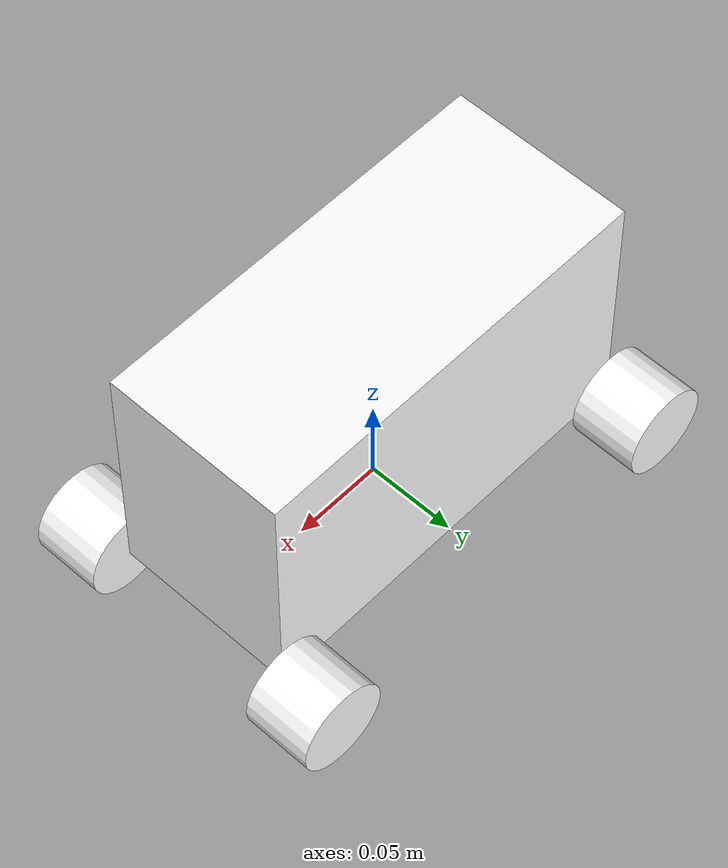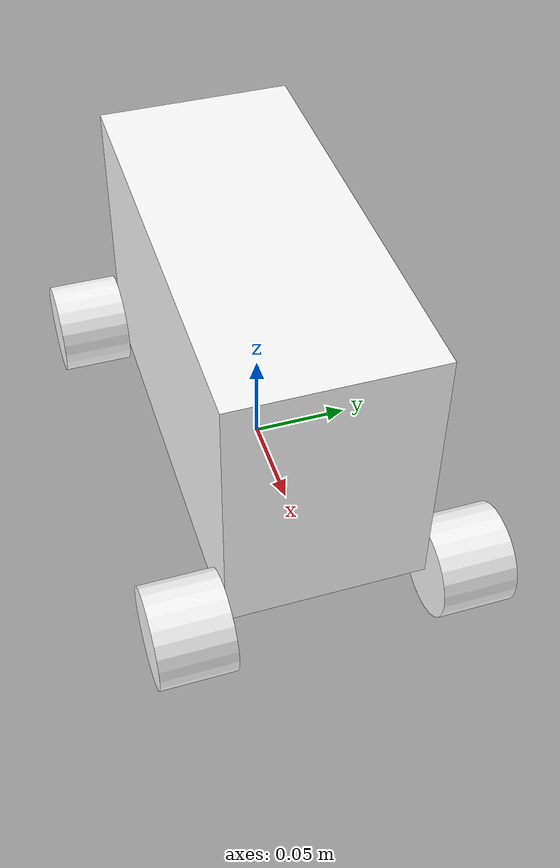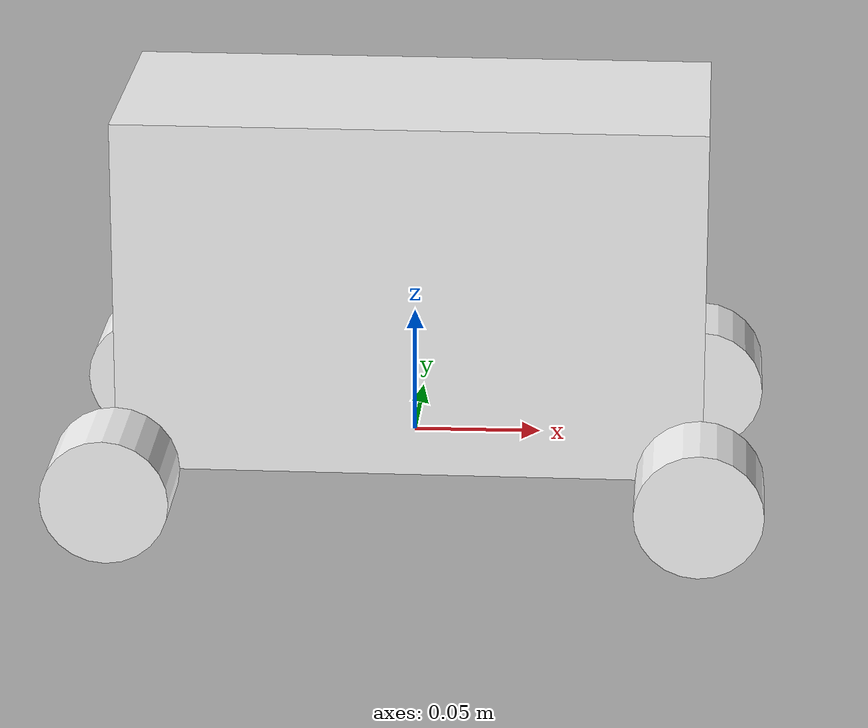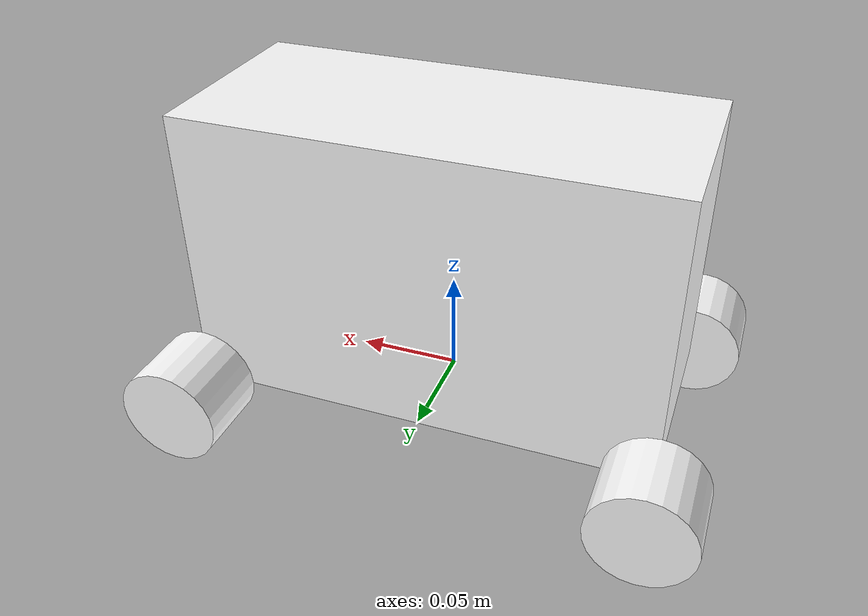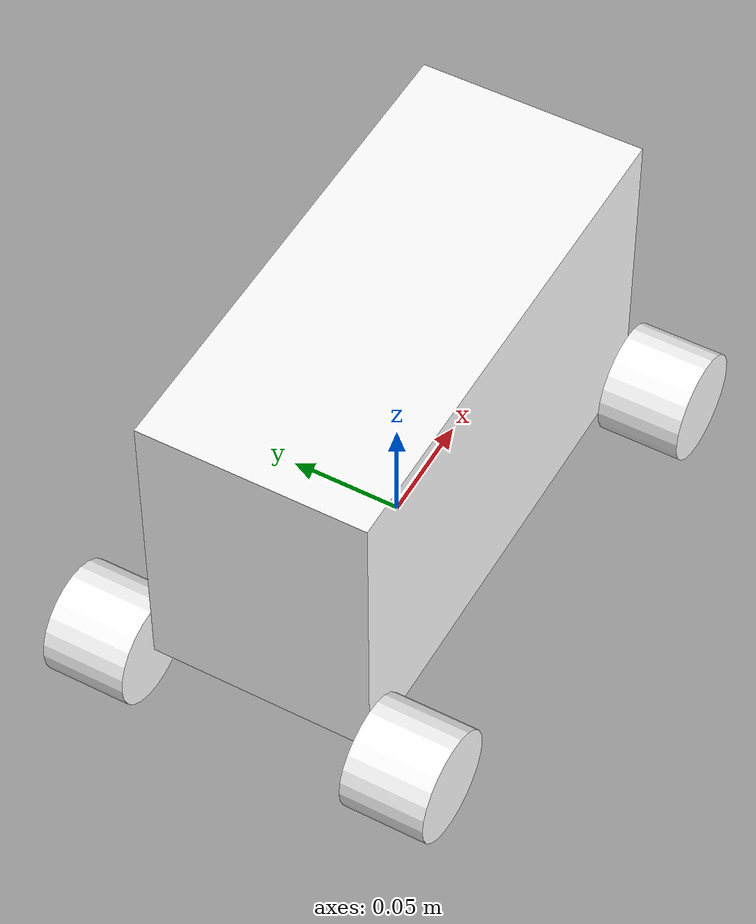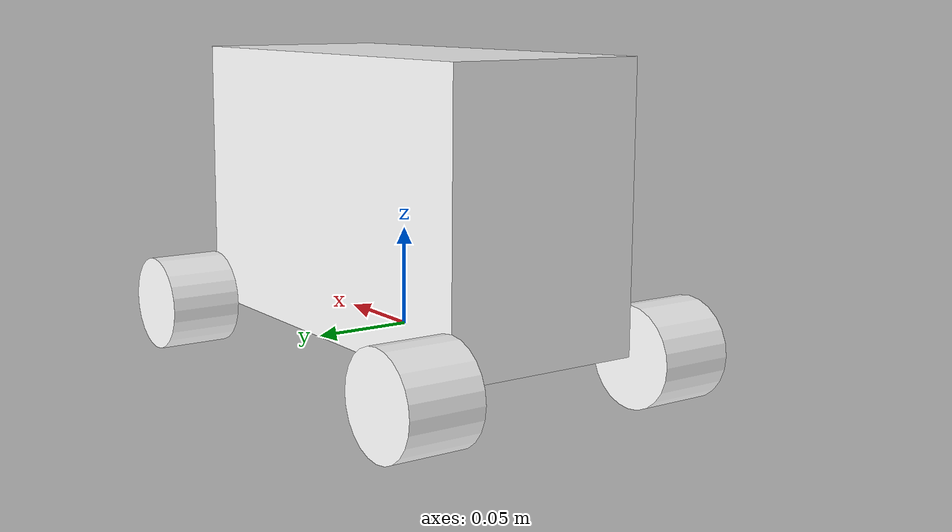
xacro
<?xml version="1.0"?>
<robot xmlns:xacro="http://www.ros.org/wiki/xacro"  name="robot">

    <xacro:include filename="inertial_macros.xacro"/>

    <material name="white">
        <color rgba="1 1 1 1"/>
    </material>

    <material name="orange">
        <color rgba="1 0.3 0.1 1"/>
    </material>

    <!-- BASE LINK -->

    <link name="base_link">

    </link>

    <joint name="base_footprint_joint" type="fixed">
        <parent link="base_link"/>
        <child link = "base_footprint"/>
        <origin xyz="0 0 0"/>
    </joint>

    <link name="base_footprint">
    </link>

    <!-- CHASSIS LINK -->

    <joint name="chassis_joint" type="fixed">
        <parent link="base_link"/>
        <child link = "chassis"/>
        <origin xyz="-0.114 0 0"/>
    </joint>

    <link name="chassis">
        <visual>
            <origin xyz="0.1145 0 0.07"/>
            <geometry>
                <box size="0.229 0.102 0.14"/>
            </geometry>
            <material name = "white"/>
        </visual>
        <collision>
            <origin xyz="0.1145 0 0.07"/>
            <geometry>
                <box size="0.229 0.102 0.14"/>
            </geometry>
        </collision>
        <xacro:inertial_box mass="0.453" x="0.229" y="0.102" z="0.14">
            <origin xyz="0.1145 0 0.07" rpy= "0 0 0"/>
        </xacro:inertial_box>
    </link>

    <!-- LEFT BACK WHEEL LINK -->

    <joint name="left_back_wheel_joint" type="continuous">
        <parent link="base_link"/>
        <child link="left_back_wheel"/>
        <origin xyz="-0.114 0.07 0" rpy="-${pi/2} 0 0"/>
        <axis xyz= "0 0 1"/>
    </joint>

    <link name="left_back_wheel">
        <visual>
            <geometry>
                <cylinder radius="0.025" length="0.038"/>
            </geometry>
            <material name = "white"/>
        </visual>
        <collision>
            <geometry>
                <cylinder radius="0.025" length="0.038"/>
            </geometry>
        </collision>
        <xacro:inertial_cylinder mass="0.1" length="0.038" radius="0.025">
            <origin xyz="0 0 0" rpy= "0 0 0"/>
        </xacro:inertial_cylinder>
    </link>

    <!-- LEFT FRONT WHEEL LINK -->

    <joint name="left_front_wheel_joint" type="continuous">
        <parent link="base_link"/>
        <child link="left_front_wheel"/>
        <origin xyz="0.114 0.07 0" rpy="-${pi/2} 0 0"/>
        <axis xyz= "0 0 1"/>
    </joint>

    <link name="left_front_wheel">
        <visual>
            <geometry>
                <cylinder radius="0.025" length="0.038"/>
            </geometry>
            <material name = "white"/>
        </visual>
        <collision>
            <geometry>
                <cylinder radius="0.025" length="0.038"/>
            </geometry>
        </collision>
        <xacro:inertial_cylinder mass="0.1" length="0.038" radius="0.025">
            <origin xyz="0 0 0" rpy= "0 0 0"/>
        </xacro:inertial_cylinder>
    </link>

    <gazebo reference="left_front_wheel">
        <mu1 value="0.001"/>
        <mu2 value="0.001"/>
    </gazebo>

    <!-- RIGHT BACK WHEEL LINK -->

    <joint name="right_back_wheel_joint" type="continuous">
        <parent link="base_link"/>
        <child link="right_back_wheel"/>
        <origin xyz="-0.114 -0.07 0" rpy="${pi/2} 0 0"/>
        <axis xyz= "0 0 -1"/>
    </joint>

    <link name="right_back_wheel">
        <visual>
            <geometry>
                <cylinder radius="0.025" length="0.038"/>
            </geometry>
            <material name = "white"/>
        </visual>
        <collision>
            <geometry>
                <cylinder radius="0.025" length="0.038"/>
            </geometry>
        </collision>
        <xacro:inertial_cylinder mass="0.1" length="0.038" radius="0.025">
            <origin xyz="0 0 0" rpy= "0 0 0"/>
        </xacro:inertial_cylinder>
    </link>

    <!-- RIGHT FORWARD WHEEL LINK -->

    <joint name="right_front_wheel_joint" type="continuous">
        <parent link="base_link"/>
        <child link="right_front_wheel"/>
        <origin xyz="0.114 -0.07 0" rpy="${pi/2} 0 0"/>
        <axis xyz= "0 0 -1"/>
    </joint>

    <link name="right_front_wheel">
        <visual>
            <geometry>
                <cylinder radius="0.025" length="0.038"/>
            </geometry>
            <material name = "white"/>
        </visual>
        <collision>
            <geometry>
                <cylinder radius="0.025" length="0.038"/>
            </geometry>
        </collision>
        <xacro:inertial_cylinder mass="0.1" length="0.038" radius="0.025">
            <origin xyz="0 0 0" rpy= "0 0 0"/>
        </xacro:inertial_cylinder>
    </link>

    <gazebo reference="right_front_wheel">
        <mu1 value="0.001"/>
        <mu2 value="0.001"/>
    </gazebo>
</robot>
